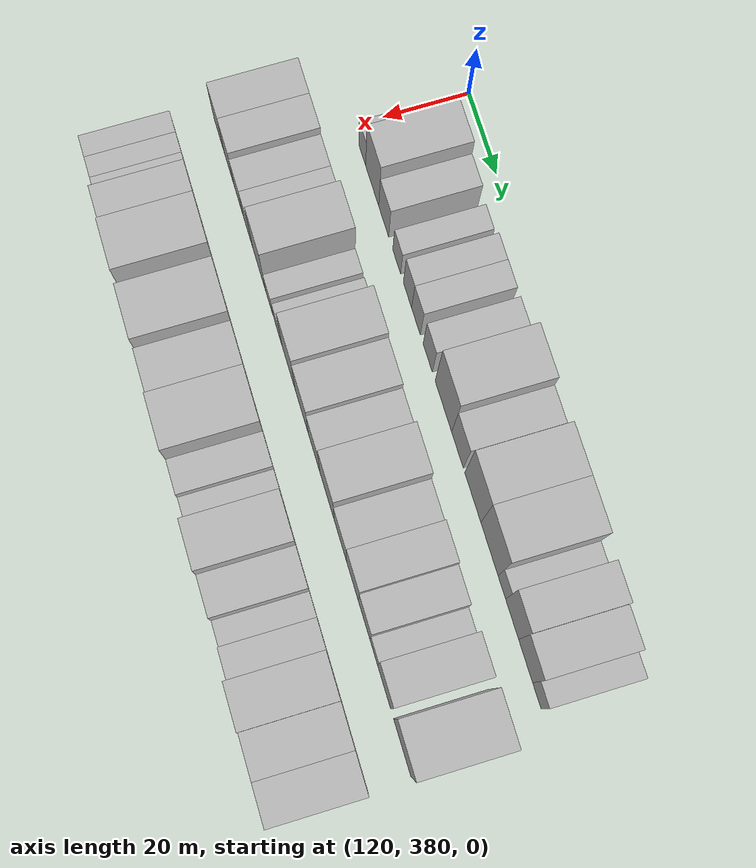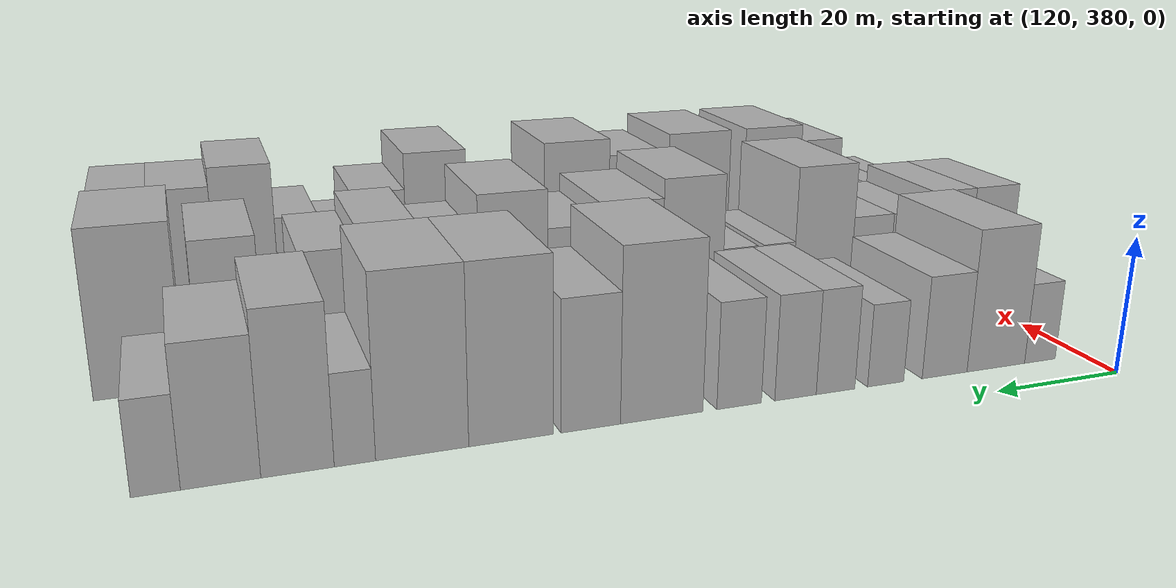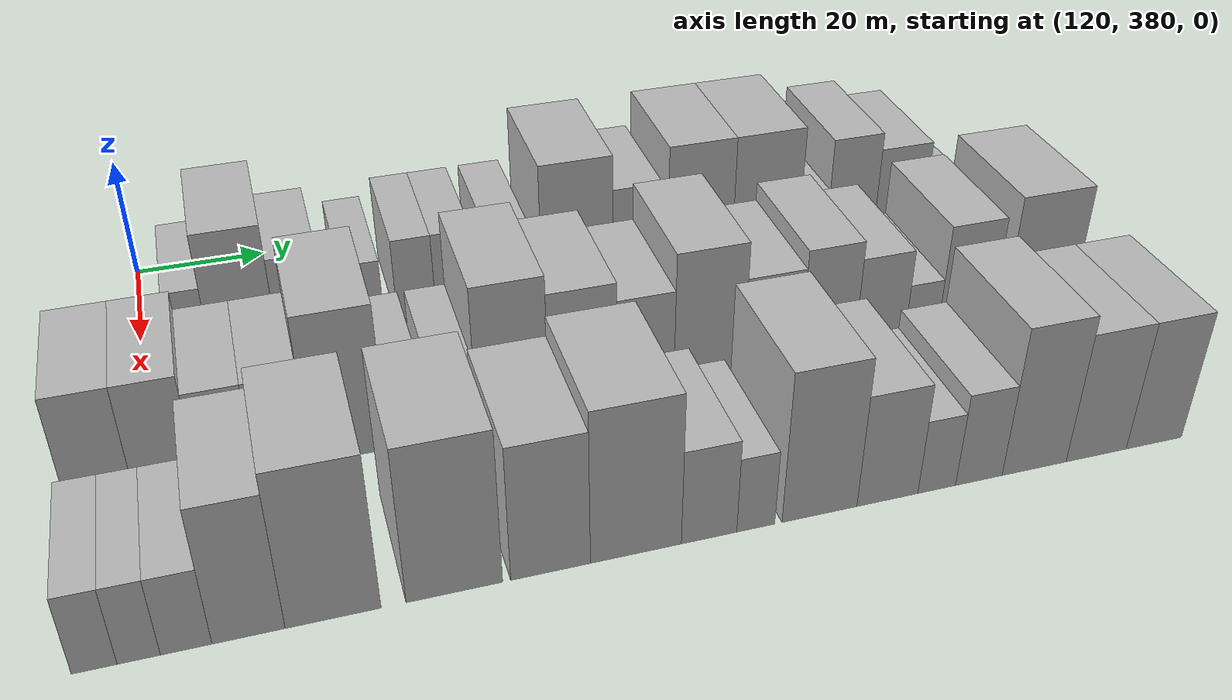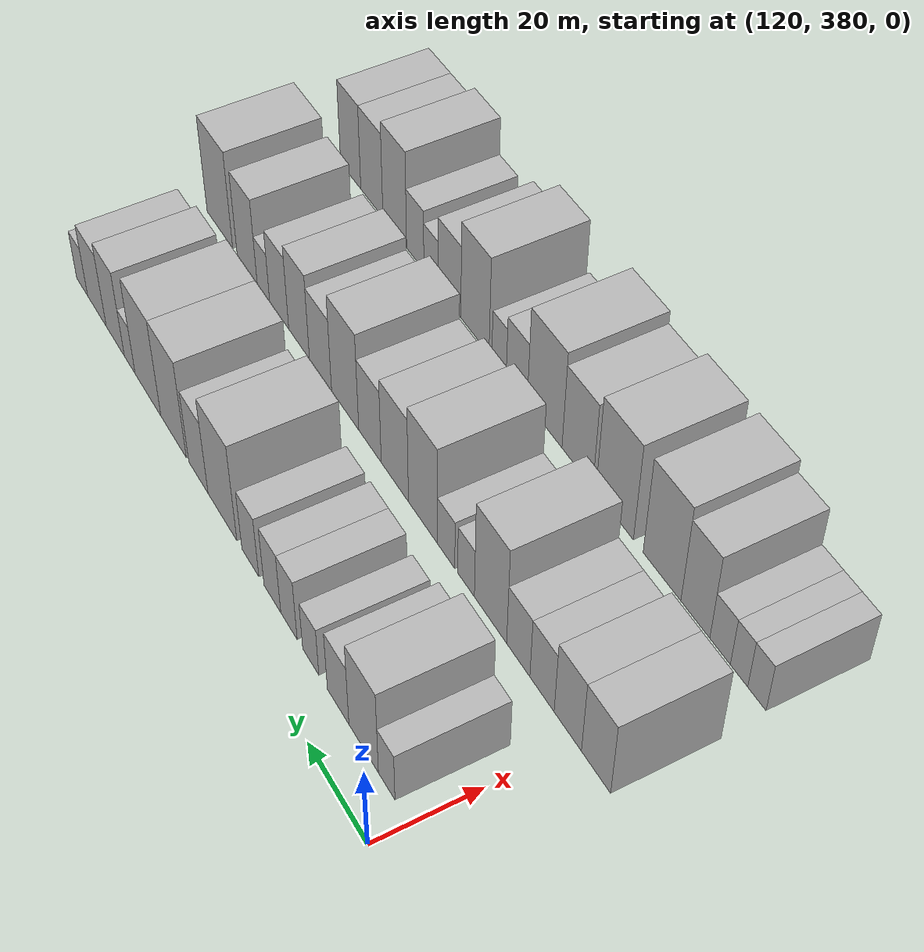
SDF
<sdf version="1.6">
 <world name="default">
  <model name="building_436">
   <static>1</static>
   <pose>137.0000 387.3337 0 0.000000 0.000000 0.000000</pose>
   <link name="link">
    <pose>0 0 6.00 0 0 0</pose>
    <collision name="collision"><geometry><box><size>20.0000 5.3679 12.0000</size></box></geometry></collision>
    <visual name="visual">
     <cast_shadows>0</cast_shadows>
     <geometry><box><size>20.0000 5.3679 12.0000</size></box></geometry>
     <material>
      <script>
       <uri>model://HANNAS_wall/materials/scripts</uri>
       <uri>model://HANNAS_wall/materials/textures</uri>
       <name>vrc/HANNAS_wall</name>
      </script>
     </material>
    </visual>
   </link>
  </model>
  <model name="building_437">
   <static>1</static>
   <pose>137.0000 394.9369 0 0.000000 0.000000 0.000000</pose>
   <link name="link">
    <pose>0 0 10.50 0 0 0</pose>
    <collision name="collision"><geometry><box><size>20.0000 9.8385 21.0000</size></box></geometry></collision>
    <visual name="visual">
     <cast_shadows>0</cast_shadows>
     <geometry><box><size>20.0000 9.8385 21.0000</size></box></geometry>
     <material>
      <script>
       <uri>model://HANNAS_wall/materials/scripts</uri>
       <uri>model://HANNAS_wall/materials/textures</uri>
       <name>vrc/HANNAS_wall</name>
      </script>
     </material>
    </visual>
   </link>
  </model>
  <model name="building_438">
   <static>1</static>
   <pose>137.0000 403.5711 0 0.000000 0.000000 0.000000</pose>
   <link name="link">
    <pose>0 0 7.50 0 0 0</pose>
    <collision name="collision"><geometry><box><size>20.0000 7.4299 15.0000</size></box></geometry></collision>
    <visual name="visual">
     <cast_shadows>0</cast_shadows>
     <geometry><box><size>20.0000 7.4299 15.0000</size></box></geometry>
     <material>
      <script>
       <uri>model://HANNAS_wall/materials/scripts</uri>
       <uri>model://HANNAS_wall/materials/textures</uri>
       <name>vrc/HANNAS_wall</name>
      </script>
     </material>
    </visual>
   </link>
  </model>
  <model name="building_439">
   <static>1</static>
   <pose>137.0000 413.1751 0 0.000000 0.000000 0.000000</pose>
   <link name="link">
    <pose>0 0 6.00 0 0 0</pose>
    <collision name="collision"><geometry><box><size>20.0000 5.7781 12.0000</size></box></geometry></collision>
    <visual name="visual">
     <cast_shadows>0</cast_shadows>
     <geometry><box><size>20.0000 5.7781 12.0000</size></box></geometry>
     <material>
      <script>
       <uri>model://HANNAS_wall/materials/scripts</uri>
       <uri>model://HANNAS_wall/materials/textures</uri>
       <name>vrc/HANNAS_wall</name>
      </script>
     </material>
    </visual>
   </link>
  </model>
  <model name="building_440">
   <static>1</static>
   <pose>137.0000 421.0662 0 0.000000 0.000000 0.000000</pose>
   <link name="link">
    <pose>0 0 7.50 0 0 0</pose>
    <collision name="collision"><geometry><box><size>20.0000 6.0040 15.0000</size></box></geometry></collision>
    <visual name="visual">
     <cast_shadows>0</cast_shadows>
     <geometry><box><size>20.0000 6.0040 15.0000</size></box></geometry>
     <material>
      <script>
       <uri>model://HANNAS_wall/materials/scripts</uri>
       <uri>model://HANNAS_wall/materials/textures</uri>
       <name>vrc/HANNAS_wall</name>
      </script>
     </material>
    </visual>
   </link>
  </model>
  <model name="building_441">
   <static>1</static>
   <pose>137.0000 427.2104 0 0.000000 0.000000 0.000000</pose>
   <link name="link">
    <pose>0 0 7.50 0 0 0</pose>
    <collision name="collision"><geometry><box><size>20.0000 6.2844 15.0000</size></box></geometry></collision>
    <visual name="visual">
     <cast_shadows>0</cast_shadows>
     <geometry><box><size>20.0000 6.2844 15.0000</size></box></geometry>
     <material>
      <script>
       <uri>model://HANNAS_wall/materials/scripts</uri>
       <uri>model://HANNAS_wall/materials/textures</uri>
       <name>vrc/HANNAS_wall</name>
      </script>
     </material>
    </visual>
   </link>
  </model>
  <model name="building_442">
   <static>1</static>
   <pose>137.0000 435.6267 0 0.000000 0.000000 0.000000</pose>
   <link name="link">
    <pose>0 0 7.50 0 0 0</pose>
    <collision name="collision"><geometry><box><size>20.0000 6.5481 15.0000</size></box></geometry></collision>
    <visual name="visual">
     <cast_shadows>0</cast_shadows>
     <geometry><box><size>20.0000 6.5481 15.0000</size></box></geometry>
     <material>
      <script>
       <uri>model://HANNAS_wall/materials/scripts</uri>
       <uri>model://HANNAS_wall/materials/textures</uri>
       <name>vrc/HANNAS_wall</name>
      </script>
     </material>
    </visual>
   </link>
  </model>
  <model name="building_443">
   <static>1</static>
   <pose>137.0000 446.7003 0 0.000000 0.000000 0.000000</pose>
   <link name="link">
    <pose>0 0 12.00 0 0 0</pose>
    <collision name="collision"><geometry><box><size>20.0000 11.5991 24.0000</size></box></geometry></collision>
    <visual name="visual">
     <cast_shadows>0</cast_shadows>
     <geometry><box><size>20.0000 11.5991 24.0000</size></box></geometry>
     <material>
      <script>
       <uri>model://HANNAS_wall/materials/scripts</uri>
       <uri>model://HANNAS_wall/materials/textures</uri>
       <name>vrc/HANNAS_wall</name>
      </script>
     </material>
    </visual>
   </link>
  </model>
  <model name="building_444">
   <static>1</static>
   <pose>137.0000 456.5271 0 0.000000 0.000000 0.000000</pose>
   <link name="link">
    <pose>0 0 9.00 0 0 0</pose>
    <collision name="collision"><geometry><box><size>20.0000 8.0543 18.0000</size></box></geometry></collision>
    <visual name="visual">
     <cast_shadows>0</cast_shadows>
     <geometry><box><size>20.0000 8.0543 18.0000</size></box></geometry>
     <material>
      <script>
       <uri>model://HANNAS_wall/materials/scripts</uri>
       <uri>model://HANNAS_wall/materials/textures</uri>
       <name>vrc/HANNAS_wall</name>
      </script>
     </material>
    </visual>
   </link>
  </model>
  <model name="building_445">
   <static>1</static>
   <pose>137.0000 467.0487 0 0.000000 0.000000 0.000000</pose>
   <link name="link">
    <pose>0 0 12.00 0 0 0</pose>
    <collision name="collision"><geometry><box><size>20.0000 10.9889 24.0000</size></box></geometry></collision>
    <visual name="visual">
     <cast_shadows>0</cast_shadows>
     <geometry><box><size>20.0000 10.9889 24.0000</size></box></geometry>
     <material>
      <script>
       <uri>model://HANNAS_wall/materials/scripts</uri>
       <uri>model://HANNAS_wall/materials/textures</uri>
       <name>vrc/HANNAS_wall</name>
      </script>
     </material>
    </visual>
   </link>
  </model>
  <model name="building_446">
   <static>1</static>
   <pose>137.0000 478.3090 0 0.000000 0.000000 0.000000</pose>
   <link name="link">
    <pose>0 0 12.00 0 0 0</pose>
    <collision name="collision"><geometry><box><size>20.0000 11.5318 24.0000</size></box></geometry></collision>
    <visual name="visual">
     <cast_shadows>0</cast_shadows>
     <geometry><box><size>20.0000 11.5318 24.0000</size></box></geometry>
     <material>
      <script>
       <uri>model://HANNAS_wall/materials/scripts</uri>
       <uri>model://HANNAS_wall/materials/textures</uri>
       <name>vrc/HANNAS_wall</name>
      </script>
     </material>
    </visual>
   </link>
  </model>
  <model name="building_447">
   <static>1</static>
   <pose>137.0000 486.5474 0 0.000000 0.000000 0.000000</pose>
   <link name="link">
    <pose>0 0 6.00 0 0 0</pose>
    <collision name="collision"><geometry><box><size>20.0000 4.9449 12.0000</size></box></geometry></collision>
    <visual name="visual">
     <cast_shadows>0</cast_shadows>
     <geometry><box><size>20.0000 4.9449 12.0000</size></box></geometry>
     <material>
      <script>
       <uri>model://HANNAS_wall/materials/scripts</uri>
       <uri>model://HANNAS_wall/materials/textures</uri>
       <name>vrc/HANNAS_wall</name>
      </script>
     </material>
    </visual>
   </link>
  </model>
  <model name="building_448">
   <static>1</static>
   <pose>137.0000 493.2860 0 0.000000 0.000000 0.000000</pose>
   <link name="link">
    <pose>0 0 10.50 0 0 0</pose>
    <collision name="collision"><geometry><box><size>20.0000 8.5323 21.0000</size></box></geometry></collision>
    <visual name="visual">
     <cast_shadows>0</cast_shadows>
     <geometry><box><size>20.0000 8.5323 21.0000</size></box></geometry>
     <material>
      <script>
       <uri>model://HANNAS_wall/materials/scripts</uri>
       <uri>model://HANNAS_wall/materials/textures</uri>
       <name>vrc/HANNAS_wall</name>
      </script>
     </material>
    </visual>
   </link>
  </model>
  <model name="building_449">
   <static>1</static>
   <pose>137.0000 502.0479 0 0.000000 0.000000 0.000000</pose>
   <link name="link">
    <pose>0 0 9.00 0 0 0</pose>
    <collision name="collision"><geometry><box><size>20.0000 8.9914 18.0000</size></box></geometry></collision>
    <visual name="visual">
     <cast_shadows>0</cast_shadows>
     <geometry><box><size>20.0000 8.9914 18.0000</size></box></geometry>
     <material>
      <script>
       <uri>model://HANNAS_wall/materials/scripts</uri>
       <uri>model://HANNAS_wall/materials/textures</uri>
       <name>vrc/HANNAS_wall</name>
      </script>
     </material>
    </visual>
   </link>
  </model>
  <model name="building_450">
   <static>1</static>
   <pose>137.0000 509.2643 0 0.000000 0.000000 0.000000</pose>
   <link name="link">
    <pose>0 0 6.00 0 0 0</pose>
    <collision name="collision"><geometry><box><size>20.0000 5.4415 12.0000</size></box></geometry></collision>
    <visual name="visual">
     <cast_shadows>0</cast_shadows>
     <geometry><box><size>20.0000 5.4415 12.0000</size></box></geometry>
     <material>
      <script>
       <uri>model://HANNAS_wall/materials/scripts</uri>
       <uri>model://HANNAS_wall/materials/textures</uri>
       <name>vrc/HANNAS_wall</name>
      </script>
     </material>
    </visual>
   </link>
  </model>
  <model name="building_537">
   <static>1</static>
   <pose>166.0000 374.2337 0 0.000000 0.000000 0.000000</pose>
   <link name="link">
    <pose>0 0 9.00 0 0 0</pose>
    <collision name="collision"><geometry><box><size>20.0000 8.4332 18.0000</size></box></geometry></collision>
    <visual name="visual">
     <cast_shadows>0</cast_shadows>
     <geometry><box><size>20.0000 8.4332 18.0000</size></box></geometry>
     <material>
      <script>
       <uri>model://HANNAS_wall/materials/scripts</uri>
       <uri>model://HANNAS_wall/materials/textures</uri>
       <name>vrc/HANNAS_wall</name>
      </script>
     </material>
    </visual>
   </link>
  </model>
  <model name="building_538">
   <static>1</static>
   <pose>166.0000 382.5101 0 0.000000 0.000000 0.000000</pose>
   <link name="link">
    <pose>0 0 9.00 0 0 0</pose>
    <collision name="collision"><geometry><box><size>20.0000 8.1196 18.0000</size></box></geometry></collision>
    <visual name="visual">
     <cast_shadows>0</cast_shadows>
     <geometry><box><size>20.0000 8.1196 18.0000</size></box></geometry>
     <material>
      <script>
       <uri>model://HANNAS_wall/materials/scripts</uri>
       <uri>model://HANNAS_wall/materials/textures</uri>
       <name>vrc/HANNAS_wall</name>
      </script>
     </material>
    </visual>
   </link>
  </model>
  <model name="building_539">
   <static>1</static>
   <pose>166.0000 390.2842 0 0.000000 0.000000 0.000000</pose>
   <link name="link">
    <pose>0 0 7.50 0 0 0</pose>
    <collision name="collision"><geometry><box><size>20.0000 7.4286 15.0000</size></box></geometry></collision>
    <visual name="visual">
     <cast_shadows>0</cast_shadows>
     <geometry><box><size>20.0000 7.4286 15.0000</size></box></geometry>
     <material>
      <script>
       <uri>model://HANNAS_wall/materials/scripts</uri>
       <uri>model://HANNAS_wall/materials/textures</uri>
       <name>vrc/HANNAS_wall</name>
      </script>
     </material>
    </visual>
   </link>
  </model>
  <model name="building_540">
   <static>1</static>
   <pose>166.0000 397.6592 0 0.000000 0.000000 0.000000</pose>
   <link name="link">
    <pose>0 0 7.50 0 0 0</pose>
    <collision name="collision"><geometry><box><size>20.0000 7.3214 15.0000</size></box></geometry></collision>
    <visual name="visual">
     <cast_shadows>0</cast_shadows>
     <geometry><box><size>20.0000 7.3214 15.0000</size></box></geometry>
     <material>
      <script>
       <uri>model://HANNAS_wall/materials/scripts</uri>
       <uri>model://HANNAS_wall/materials/textures</uri>
       <name>vrc/HANNAS_wall</name>
      </script>
     </material>
    </visual>
   </link>
  </model>
  <model name="building_541">
   <static>1</static>
   <pose>166.0000 406.5600 0 0.000000 0.000000 0.000000</pose>
   <link name="link">
    <pose>0 0 12.00 0 0 0</pose>
    <collision name="collision"><geometry><box><size>20.0000 10.4801 24.0000</size></box></geometry></collision>
    <visual name="visual">
     <cast_shadows>0</cast_shadows>
     <geometry><box><size>20.0000 10.4801 24.0000</size></box></geometry>
     <material>
      <script>
       <uri>model://HANNAS_wall/materials/scripts</uri>
       <uri>model://HANNAS_wall/materials/textures</uri>
       <name>vrc/HANNAS_wall</name>
      </script>
     </material>
    </visual>
   </link>
  </model>
  <model name="building_542">
   <static>1</static>
   <pose>166.0000 414.5862 0 0.000000 0.000000 0.000000</pose>
   <link name="link">
    <pose>0 0 6.00 0 0 0</pose>
    <collision name="collision"><geometry><box><size>20.0000 5.5724 12.0000</size></box></geometry></collision>
    <visual name="visual">
     <cast_shadows>0</cast_shadows>
     <geometry><box><size>20.0000 5.5724 12.0000</size></box></geometry>
     <material>
      <script>
       <uri>model://HANNAS_wall/materials/scripts</uri>
       <uri>model://HANNAS_wall/materials/textures</uri>
       <name>vrc/HANNAS_wall</name>
      </script>
     </material>
    </visual>
   </link>
  </model>
  <model name="building_543">
   <static>1</static>
   <pose>166.0000 421.3340 0 0.000000 0.000000 0.000000</pose>
   <link name="link">
    <pose>0 0 6.00 0 0 0</pose>
    <collision name="collision"><geometry><box><size>20.0000 5.9232 12.0000</size></box></geometry></collision>
    <visual name="visual">
     <cast_shadows>0</cast_shadows>
     <geometry><box><size>20.0000 5.9232 12.0000</size></box></geometry>
     <material>
      <script>
       <uri>model://HANNAS_wall/materials/scripts</uri>
       <uri>model://HANNAS_wall/materials/textures</uri>
       <name>vrc/HANNAS_wall</name>
      </script>
     </material>
    </visual>
   </link>
  </model>
  <model name="building_544">
   <static>1</static>
   <pose>166.0000 429.4051 0 0.000000 0.000000 0.000000</pose>
   <link name="link">
    <pose>0 0 12.00 0 0 0</pose>
    <collision name="collision"><geometry><box><size>20.0000 10.2190 24.0000</size></box></geometry></collision>
    <visual name="visual">
     <cast_shadows>0</cast_shadows>
     <geometry><box><size>20.0000 10.2190 24.0000</size></box></geometry>
     <material>
      <script>
       <uri>model://HANNAS_wall/materials/scripts</uri>
       <uri>model://HANNAS_wall/materials/textures</uri>
       <name>vrc/HANNAS_wall</name>
      </script>
     </material>
    </visual>
   </link>
  </model>
  <model name="building_545">
   <static>1</static>
   <pose>166.0000 439.4803 0 0.000000 0.000000 0.000000</pose>
   <link name="link">
    <pose>0 0 10.50 0 0 0</pose>
    <collision name="collision"><geometry><box><size>20.0000 9.9314 21.0000</size></box></geometry></collision>
    <visual name="visual">
     <cast_shadows>0</cast_shadows>
     <geometry><box><size>20.0000 9.9314 21.0000</size></box></geometry>
     <material>
      <script>
       <uri>model://HANNAS_wall/materials/scripts</uri>
       <uri>model://HANNAS_wall/materials/textures</uri>
       <name>vrc/HANNAS_wall</name>
      </script>
     </material>
    </visual>
   </link>
  </model>
  <model name="building_546">
   <static>1</static>
   <pose>166.0000 448.6781 0 0.000000 0.000000 0.000000</pose>
   <link name="link">
    <pose>0 0 9.00 0 0 0</pose>
    <collision name="collision"><geometry><box><size>20.0000 8.4641 18.0000</size></box></geometry></collision>
    <visual name="visual">
     <cast_shadows>0</cast_shadows>
     <geometry><box><size>20.0000 8.4641 18.0000</size></box></geometry>
     <material>
      <script>
       <uri>model://HANNAS_wall/materials/scripts</uri>
       <uri>model://HANNAS_wall/materials/textures</uri>
       <name>vrc/HANNAS_wall</name>
      </script>
     </material>
    </visual>
   </link>
  </model>
  <model name="building_547">
   <static>1</static>
   <pose>166.0000 458.1915 0 0.000000 0.000000 0.000000</pose>
   <link name="link">
    <pose>0 0 12.00 0 0 0</pose>
    <collision name="collision"><geometry><box><size>20.0000 10.5627 24.0000</size></box></geometry></collision>
    <visual name="visual">
     <cast_shadows>0</cast_shadows>
     <geometry><box><size>20.0000 10.5627 24.0000</size></box></geometry>
     <material>
      <script>
       <uri>model://HANNAS_wall/materials/scripts</uri>
       <uri>model://HANNAS_wall/materials/textures</uri>
       <name>vrc/HANNAS_wall</name>
      </script>
     </material>
    </visual>
   </link>
  </model>
  <model name="building_548">
   <static>1</static>
   <pose>166.0000 467.9051 0 0.000000 0.000000 0.000000</pose>
   <link name="link">
    <pose>0 0 9.00 0 0 0</pose>
    <collision name="collision"><geometry><box><size>20.0000 8.8646 18.0000</size></box></geometry></collision>
    <visual name="visual">
     <cast_shadows>0</cast_shadows>
     <geometry><box><size>20.0000 8.8646 18.0000</size></box></geometry>
     <material>
      <script>
       <uri>model://HANNAS_wall/materials/scripts</uri>
       <uri>model://HANNAS_wall/materials/textures</uri>
       <name>vrc/HANNAS_wall</name>
      </script>
     </material>
    </visual>
   </link>
  </model>
  <model name="building_549">
   <static>1</static>
   <pose>166.0000 476.6145 0 0.000000 0.000000 0.000000</pose>
   <link name="link">
    <pose>0 0 10.50 0 0 0</pose>
    <collision name="collision"><geometry><box><size>20.0000 8.5541 21.0000</size></box></geometry></collision>
    <visual name="visual">
     <cast_shadows>0</cast_shadows>
     <geometry><box><size>20.0000 8.5541 21.0000</size></box></geometry>
     <material>
      <script>
       <uri>model://HANNAS_wall/materials/scripts</uri>
       <uri>model://HANNAS_wall/materials/textures</uri>
       <name>vrc/HANNAS_wall</name>
      </script>
     </material>
    </visual>
   </link>
  </model>
  <model name="building_550">
   <static>1</static>
   <pose>166.0000 484.9360 0 0.000000 0.000000 0.000000</pose>
   <link name="link">
    <pose>0 0 9.00 0 0 0</pose>
    <collision name="collision"><geometry><box><size>20.0000 8.0890 18.0000</size></box></geometry></collision>
    <visual name="visual">
     <cast_shadows>0</cast_shadows>
     <geometry><box><size>20.0000 8.0890 18.0000</size></box></geometry>
     <material>
      <script>
       <uri>model://HANNAS_wall/materials/scripts</uri>
       <uri>model://HANNAS_wall/materials/textures</uri>
       <name>vrc/HANNAS_wall</name>
      </script>
     </material>
    </visual>
   </link>
  </model>
  <model name="building_551">
   <static>1</static>
   <pose>166.0000 491.6765 0 0.000000 0.000000 0.000000</pose>
   <link name="link">
    <pose>0 0 6.00 0 0 0</pose>
    <collision name="collision"><geometry><box><size>20.0000 5.3919 12.0000</size></box></geometry></collision>
    <visual name="visual">
     <cast_shadows>0</cast_shadows>
     <geometry><box><size>20.0000 5.3919 12.0000</size></box></geometry>
     <material>
      <script>
       <uri>model://HANNAS_wall/materials/scripts</uri>
       <uri>model://HANNAS_wall/materials/textures</uri>
       <name>vrc/HANNAS_wall</name>
      </script>
     </material>
    </visual>
   </link>
  </model>
  <model name="building_552">
   <static>1</static>
   <pose>166.0000 498.8079 0 0.000000 0.000000 0.000000</pose>
   <link name="link">
    <pose>0 0 10.50 0 0 0</pose>
    <collision name="collision"><geometry><box><size>20.0000 8.8709 21.0000</size></box></geometry></collision>
    <visual name="visual">
     <cast_shadows>0</cast_shadows>
     <geometry><box><size>20.0000 8.8709 21.0000</size></box></geometry>
     <material>
      <script>
       <uri>model://HANNAS_wall/materials/scripts</uri>
       <uri>model://HANNAS_wall/materials/textures</uri>
       <name>vrc/HANNAS_wall</name>
      </script>
     </material>
    </visual>
   </link>
  </model>
  <model name="building_553">
   <static>1</static>
   <pose>166.0000 511.1135 0 0.000000 0.000000 0.000000</pose>
   <link name="link">
    <pose>0 0 12.00 0 0 0</pose>
    <collision name="collision"><geometry><box><size>20.0000 11.7404 24.0000</size></box></geometry></collision>
    <visual name="visual">
     <cast_shadows>0</cast_shadows>
     <geometry><box><size>20.0000 11.7404 24.0000</size></box></geometry>
     <material>
      <script>
       <uri>model://HANNAS_wall/materials/scripts</uri>
       <uri>model://HANNAS_wall/materials/textures</uri>
       <name>vrc/HANNAS_wall</name>
      </script>
     </material>
    </visual>
   </link>
  </model>
  <model name="building_651">
   <static>1</static>
   <pose>195.0000 373.3898 0 0.000000 0.000000 0.000000</pose>
   <link name="link">
    <pose>0 0 6.00 0 0 0</pose>
    <collision name="collision"><geometry><box><size>20.0000 5.0167 12.0000</size></box></geometry></collision>
    <visual name="visual">
     <cast_shadows>0</cast_shadows>
     <geometry><box><size>20.0000 5.0167 12.0000</size></box></geometry>
     <material>
      <script>
       <uri>model://HANNAS_wall/materials/scripts</uri>
       <uri>model://HANNAS_wall/materials/textures</uri>
       <name>vrc/HANNAS_wall</name>
      </script>
     </material>
    </visual>
   </link>
  </model>
  <model name="building_652">
   <static>1</static>
   <pose>195.0000 378.3004 0 0.000000 0.000000 0.000000</pose>
   <link name="link">
    <pose>0 0 6.00 0 0 0</pose>
    <collision name="collision"><geometry><box><size>20.0000 4.8045 12.0000</size></box></geometry></collision>
    <visual name="visual">
     <cast_shadows>0</cast_shadows>
     <geometry><box><size>20.0000 4.8045 12.0000</size></box></geometry>
     <material>
      <script>
       <uri>model://HANNAS_wall/materials/scripts</uri>
       <uri>model://HANNAS_wall/materials/textures</uri>
       <name>vrc/HANNAS_wall</name>
      </script>
     </material>
    </visual>
   </link>
  </model>
  <model name="building_653">
   <static>1</static>
   <pose>195.0000 383.6079 0 0.000000 0.000000 0.000000</pose>
   <link name="link">
    <pose>0 0 6.00 0 0 0</pose>
    <collision name="collision"><geometry><box><size>20.0000 5.8105 12.0000</size></box></geometry></collision>
    <visual name="visual">
     <cast_shadows>0</cast_shadows>
     <geometry><box><size>20.0000 5.8105 12.0000</size></box></geometry>
     <material>
      <script>
       <uri>model://HANNAS_wall/materials/scripts</uri>
       <uri>model://HANNAS_wall/materials/textures</uri>
       <name>vrc/HANNAS_wall</name>
      </script>
     </material>
    </visual>
   </link>
  </model>
  <model name="building_654">
   <static>1</static>
   <pose>195.0000 390.7200 0 0.000000 0.000000 0.000000</pose>
   <link name="link">
    <pose>0 0 10.50 0 0 0</pose>
    <collision name="collision"><geometry><box><size>20.0000 8.4138 21.0000</size></box></geometry></collision>
    <visual name="visual">
     <cast_shadows>0</cast_shadows>
     <geometry><box><size>20.0000 8.4138 21.0000</size></box></geometry>
     <material>
      <script>
       <uri>model://HANNAS_wall/materials/scripts</uri>
       <uri>model://HANNAS_wall/materials/textures</uri>
       <name>vrc/HANNAS_wall</name>
      </script>
     </material>
    </visual>
   </link>
  </model>
  <model name="building_655">
   <static>1</static>
   <pose>195.0000 400.5987 0 0.000000 0.000000 0.000000</pose>
   <link name="link">
    <pose>0 0 12.00 0 0 0</pose>
    <collision name="collision"><geometry><box><size>20.0000 11.3438 24.0000</size></box></geometry></collision>
    <visual name="visual">
     <cast_shadows>0</cast_shadows>
     <geometry><box><size>20.0000 11.3438 24.0000</size></box></geometry>
     <material>
      <script>
       <uri>model://HANNAS_wall/materials/scripts</uri>
       <uri>model://HANNAS_wall/materials/textures</uri>
       <name>vrc/HANNAS_wall</name>
      </script>
     </material>
    </visual>
   </link>
  </model>
  <model name="building_656">
   <static>1</static>
   <pose>195.0000 415.2182 0 0.000000 0.000000 0.000000</pose>
   <link name="link">
    <pose>0 0 12.00 0 0 0</pose>
    <collision name="collision"><geometry><box><size>20.0000 11.8951 24.0000</size></box></geometry></collision>
    <visual name="visual">
     <cast_shadows>0</cast_shadows>
     <geometry><box><size>20.0000 11.8951 24.0000</size></box></geometry>
     <material>
      <script>
       <uri>model://HANNAS_wall/materials/scripts</uri>
       <uri>model://HANNAS_wall/materials/textures</uri>
       <name>vrc/HANNAS_wall</name>
      </script>
     </material>
    </visual>
   </link>
  </model>
  <model name="building_657">
   <static>1</static>
   <pose>195.0000 427.2387 0 0.000000 0.000000 0.000000</pose>
   <link name="link">
    <pose>0 0 10.50 0 0 0</pose>
    <collision name="collision"><geometry><box><size>20.0000 10.1458 21.0000</size></box></geometry></collision>
    <visual name="visual">
     <cast_shadows>0</cast_shadows>
     <geometry><box><size>20.0000 10.1458 21.0000</size></box></geometry>
     <material>
      <script>
       <uri>model://HANNAS_wall/materials/scripts</uri>
       <uri>model://HANNAS_wall/materials/textures</uri>
       <name>vrc/HANNAS_wall</name>
      </script>
     </material>
    </visual>
   </link>
  </model>
  <model name="building_658">
   <static>1</static>
   <pose>195.0000 438.2625 0 0.000000 0.000000 0.000000</pose>
   <link name="link">
    <pose>0 0 12.00 0 0 0</pose>
    <collision name="collision"><geometry><box><size>20.0000 11.9018 24.0000</size></box></geometry></collision>
    <visual name="visual">
     <cast_shadows>0</cast_shadows>
     <geometry><box><size>20.0000 11.9018 24.0000</size></box></geometry>
     <material>
      <script>
       <uri>model://HANNAS_wall/materials/scripts</uri>
       <uri>model://HANNAS_wall/materials/textures</uri>
       <name>vrc/HANNAS_wall</name>
      </script>
     </material>
    </visual>
   </link>
  </model>
  <model name="building_659">
   <static>1</static>
   <pose>195.0000 447.9365 0 0.000000 0.000000 0.000000</pose>
   <link name="link">
    <pose>0 0 7.50 0 0 0</pose>
    <collision name="collision"><geometry><box><size>20.0000 7.4463 15.0000</size></box></geometry></collision>
    <visual name="visual">
     <cast_shadows>0</cast_shadows>
     <geometry><box><size>20.0000 7.4463 15.0000</size></box></geometry>
     <material>
      <script>
       <uri>model://HANNAS_wall/materials/scripts</uri>
       <uri>model://HANNAS_wall/materials/textures</uri>
       <name>vrc/HANNAS_wall</name>
      </script>
     </material>
    </visual>
   </link>
  </model>
  <model name="building_660">
   <static>1</static>
   <pose>195.0000 454.2544 0 0.000000 0.000000 0.000000</pose>
   <link name="link">
    <pose>0 0 6.00 0 0 0</pose>
    <collision name="collision"><geometry><box><size>20.0000 5.1895 12.0000</size></box></geometry></collision>
    <visual name="visual">
     <cast_shadows>0</cast_shadows>
     <geometry><box><size>20.0000 5.1895 12.0000</size></box></geometry>
     <material>
      <script>
       <uri>model://HANNAS_wall/materials/scripts</uri>
       <uri>model://HANNAS_wall/materials/textures</uri>
       <name>vrc/HANNAS_wall</name>
      </script>
     </material>
    </visual>
   </link>
  </model>
  <model name="building_661">
   <static>1</static>
   <pose>195.0000 463.0840 0 0.000000 0.000000 0.000000</pose>
   <link name="link">
    <pose>0 0 12.00 0 0 0</pose>
    <collision name="collision"><geometry><box><size>20.0000 10.4695 24.0000</size></box></geometry></collision>
    <visual name="visual">
     <cast_shadows>0</cast_shadows>
     <geometry><box><size>20.0000 10.4695 24.0000</size></box></geometry>
     <material>
      <script>
       <uri>model://HANNAS_wall/materials/scripts</uri>
       <uri>model://HANNAS_wall/materials/textures</uri>
       <name>vrc/HANNAS_wall</name>
      </script>
     </material>
    </visual>
   </link>
  </model>
  <model name="building_662">
   <static>1</static>
   <pose>195.0000 472.6819 0 0.000000 0.000000 0.000000</pose>
   <link name="link">
    <pose>0 0 9.00 0 0 0</pose>
    <collision name="collision"><geometry><box><size>20.0000 8.7263 18.0000</size></box></geometry></collision>
    <visual name="visual">
     <cast_shadows>0</cast_shadows>
     <geometry><box><size>20.0000 8.7263 18.0000</size></box></geometry>
     <material>
      <script>
       <uri>model://HANNAS_wall/materials/scripts</uri>
       <uri>model://HANNAS_wall/materials/textures</uri>
       <name>vrc/HANNAS_wall</name>
      </script>
     </material>
    </visual>
   </link>
  </model>
  <model name="building_663">
   <static>1</static>
   <pose>195.0000 479.7952 0 0.000000 0.000000 0.000000</pose>
   <link name="link">
    <pose>0 0 6.00 0 0 0</pose>
    <collision name="collision"><geometry><box><size>20.0000 5.5005 12.0000</size></box></geometry></collision>
    <visual name="visual">
     <cast_shadows>0</cast_shadows>
     <geometry><box><size>20.0000 5.5005 12.0000</size></box></geometry>
     <material>
      <script>
       <uri>model://HANNAS_wall/materials/scripts</uri>
       <uri>model://HANNAS_wall/materials/textures</uri>
       <name>vrc/HANNAS_wall</name>
      </script>
     </material>
    </visual>
   </link>
  </model>
  <model name="building_664">
   <static>1</static>
   <pose>195.0000 485.9886 0 0.000000 0.000000 0.000000</pose>
   <link name="link">
    <pose>0 0 7.50 0 0 0</pose>
    <collision name="collision"><geometry><box><size>20.0000 6.8862 15.0000</size></box></geometry></collision>
    <visual name="visual">
     <cast_shadows>0</cast_shadows>
     <geometry><box><size>20.0000 6.8862 15.0000</size></box></geometry>
     <material>
      <script>
       <uri>model://HANNAS_wall/materials/scripts</uri>
       <uri>model://HANNAS_wall/materials/textures</uri>
       <name>vrc/HANNAS_wall</name>
      </script>
     </material>
    </visual>
   </link>
  </model>
  <model name="building_665">
   <static>1</static>
   <pose>195.0000 494.2783 0 0.000000 0.000000 0.000000</pose>
   <link name="link">
    <pose>0 0 12.00 0 0 0</pose>
    <collision name="collision"><geometry><box><size>20.0000 9.6933 24.0000</size></box></geometry></collision>
    <visual name="visual">
     <cast_shadows>0</cast_shadows>
     <geometry><box><size>20.0000 9.6933 24.0000</size></box></geometry>
     <material>
      <script>
       <uri>model://HANNAS_wall/materials/scripts</uri>
       <uri>model://HANNAS_wall/materials/textures</uri>
       <name>vrc/HANNAS_wall</name>
      </script>
     </material>
    </visual>
   </link>
  </model>
  <model name="building_666">
   <static>1</static>
   <pose>195.0000 503.7760 0 0.000000 0.000000 0.000000</pose>
   <link name="link">
    <pose>0 0 10.50 0 0 0</pose>
    <collision name="collision"><geometry><box><size>20.0000 9.3019 21.0000</size></box></geometry></collision>
    <visual name="visual">
     <cast_shadows>0</cast_shadows>
     <geometry><box><size>20.0000 9.3019 21.0000</size></box></geometry>
     <material>
      <script>
       <uri>model://HANNAS_wall/materials/scripts</uri>
       <uri>model://HANNAS_wall/materials/textures</uri>
       <name>vrc/HANNAS_wall</name>
      </script>
     </material>
    </visual>
   </link>
  </model>
  <model name="building_667">
   <static>1</static>
   <pose>195.0000 512.7894 0 0.000000 0.000000 0.000000</pose>
   <link name="link">
    <pose>0 0 10.50 0 0 0</pose>
    <collision name="collision"><geometry><box><size>20.0000 8.7249 21.0000</size></box></geometry></collision>
    <visual name="visual">
     <cast_shadows>0</cast_shadows>
     <geometry><box><size>20.0000 8.7249 21.0000</size></box></geometry>
     <material>
      <script>
       <uri>model://HANNAS_wall/materials/scripts</uri>
       <uri>model://HANNAS_wall/materials/textures</uri>
       <name>vrc/HANNAS_wall</name>
      </script>
     </material>
    </visual>
   </link>
  </model>
 </world>
</sdf>
